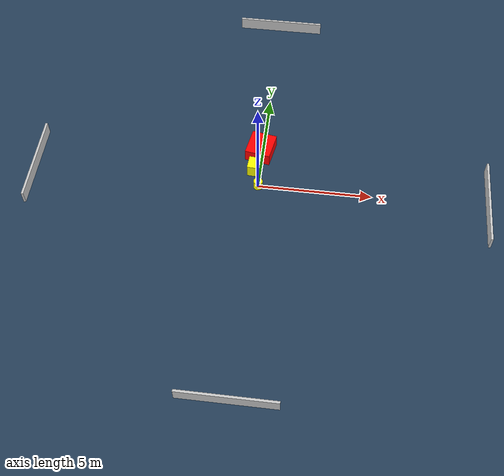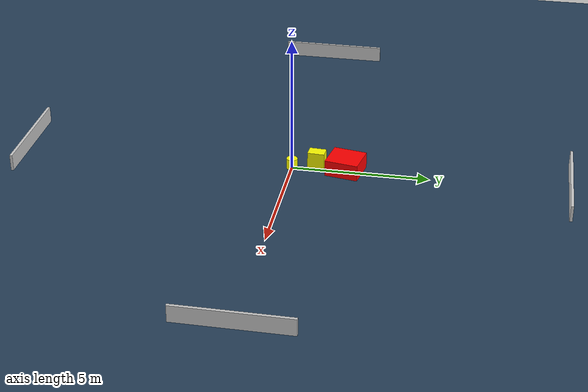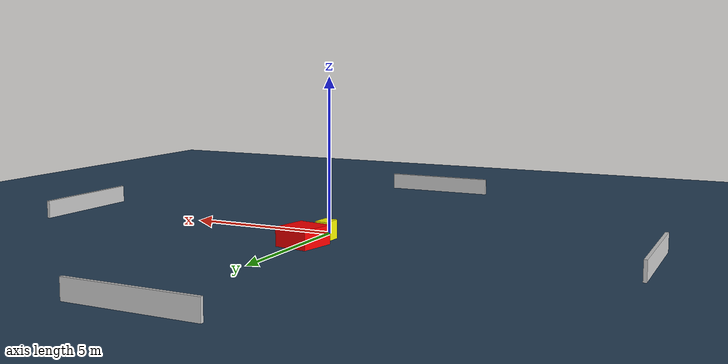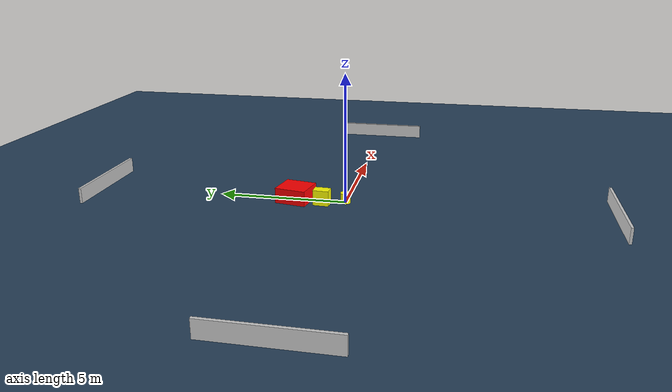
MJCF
<?xml version="1.0" ?>
<mujoco model="generated_environment">
  <option timestep="0.01" integrator="RK4" cone="elliptic"/>
  <default>
    <geom density="1"/>
  </default>
  <asset>
    <texture builtin="gradient" height="3072" name="skybox" rgb1="0.3 0.5 0.7" rgb2="0 0 0" type="skybox" width="512"/>
    <texture builtin="checker" height="300" name="groundplane" rgb1="0.2 0.3 0.4" rgb2="0.1 0.2 0.3" type="2d" width="300"/>
    <material name="groundplane" reflectance="0.2" texrepeat="5 5" texture="groundplane"/>
  </asset>
  <worldbody>
    <light dir="0 0 -1" directional="true" pos="0 0 1.5"/>
    <geom condim="3" friction="0.5 0.005 0.001" material="groundplane" name="floor" pos="0 0 0" size="0 0 0.05" type="plane"/>
    <body name="walls">
      <geom name="wall_1" condim="4" pos="-10.0 0.0 0.3" rgba="0.800000011920929 0.800000011920929 0.800000011920929 1.0" size="0.05 2.0 0.3" type="box"/>
      <geom name="wall_2" condim="4" pos="10.0 0.0 0.3" rgba="0.800000011920929 0.800000011920929 0.800000011920929 1.0" size="0.05 2.0 0.3" type="box"/>
      <geom name="wall_3" condim="4" pos="0.0 -10.0 0.3" rgba="0.800000011920929 0.800000011920929 0.800000011920929 1.0" size="2.0 0.05 0.3" type="box"/>
      <geom name="wall_4" condim="4" pos="0.0 10.0 0.3" rgba="0.800000011920929 0.800000011920929 0.800000011920929 1.0" size="2.0 0.05 0.3" type="box"/>
    </body>
    <body name="robot">
      <joint name="joint_x" type="slide" pos="0 0 0" axis="1 0 0"/>
      <joint name="joint_y" type="slide" pos="0 0 0" axis="0 1 0"/>
      <geom name="robot" type="cylinder" pos="0.0 0.0 0.2" size="0.2 0.2 0.0" mass="5.0" friction="1.0 0.005 0.0001" condim="4" rgba="1.0 1.0 0.0 1.0"/>
    </body>
    <body name="obstacle_1_movable">
      <geom name="obstacle_1_movable" condim="4" pos="-0.32547571712848306 0.8631842017711043 0.3" euler="0 0 266.38429273308316" friction="0.0 0.005 0.001" rgba="1.0 1.0 0.0 1.0" size="0.30839655598371507 0.21664395047034782 0.3" type="box" mass="0.1"/>
      <joint type="free"/>
    </body>
    <body name="obstacle_2_static">
      <geom name="obstacle_2_static" condim="4" pos="-0.09663128469783067 1.9571300130494274 0.3" euler="0 0 79.66995277015052" friction="0.0 0.005 0.001" rgba="1.0 0.0 0.0 1.0" size="0.6131758948760508 0.5621575402934764 0.3" type="box"/>
    </body>
  </worldbody>
  <actuator>
    <motor name="actuator_x" joint="joint_x" gear="1" ctrlrange="-1 1"/>
    <motor name="actuator_y" joint="joint_y" gear="1" ctrlrange="-1 1"/>
  </actuator>
</mujoco>
